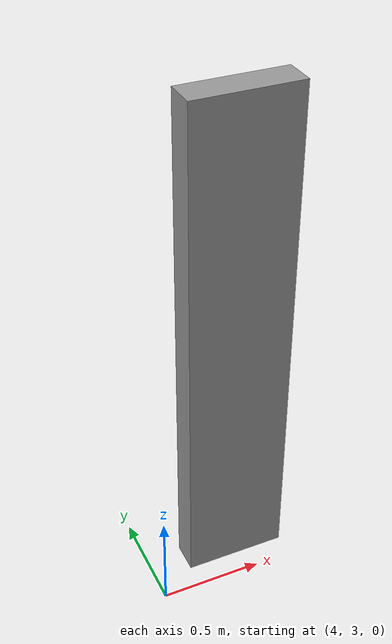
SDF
<?xml version='1.0'?>
<sdf version='1.6'>
  <model name='wall_06'>
    <pose frame=''>4.43465 3.18847 0 0 -0 0</pose>
    <link name='Wall_2'>
      <collision name='Wall_2_Collision'>
        <geometry>
          <box>
            <size>0.5 0.15 2.5</size>
          </box>
        </geometry>
        <pose frame=''>0 0 1.25 0 -0 0</pose>
      </collision>
      <visual name='Wall_2_Visual'>
        <pose frame=''>0 0 1.25 0 -0 0</pose>
        <geometry>
          <box>
            <size>0.5 0.15 2.5</size>
          </box>
        </geometry>
        <material>
          <script>
            <uri>file://media/materials/scripts/gazebo.material</uri>
            <name>Gazebo/Grey</name>
          </script>
          <ambient>1 1 1 1</ambient>
        </material>
        <meta>
          <layer>0</layer>
        </meta>
      </visual>
      <pose frame=''>0 0 0 0 -0 3.14159</pose>
    </link>
    <static>1</static>
  </model>
</sdf>
